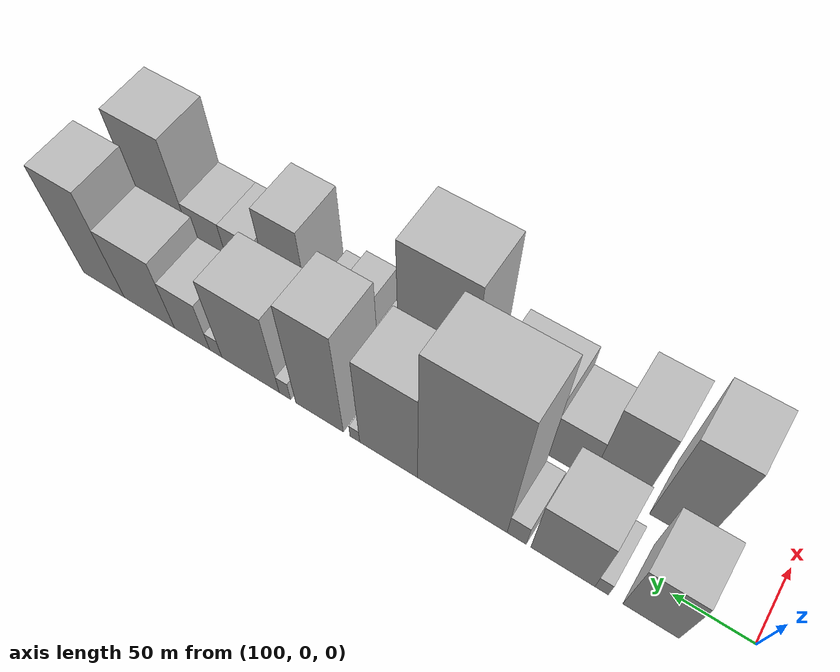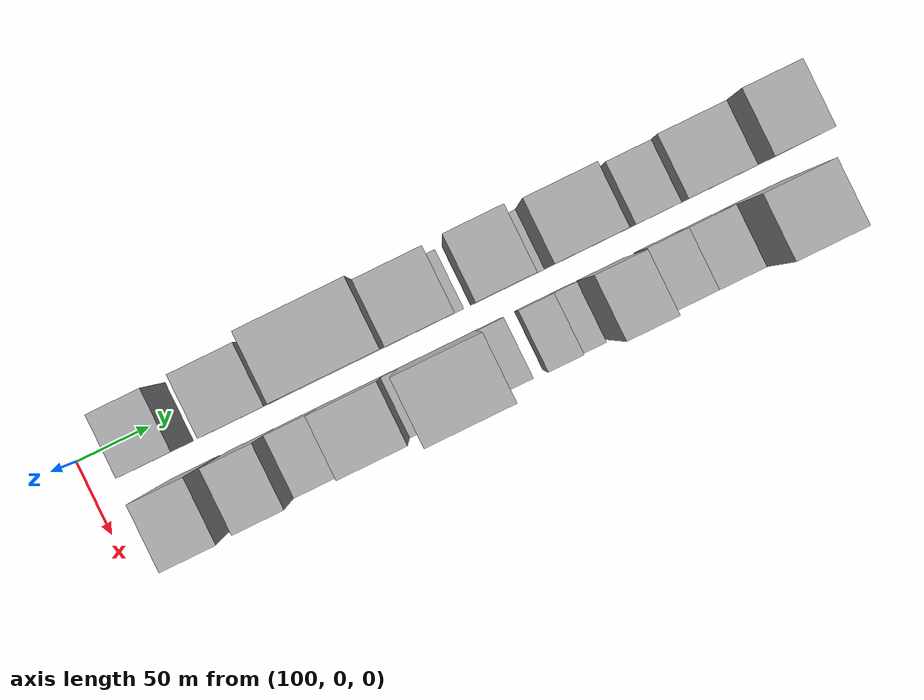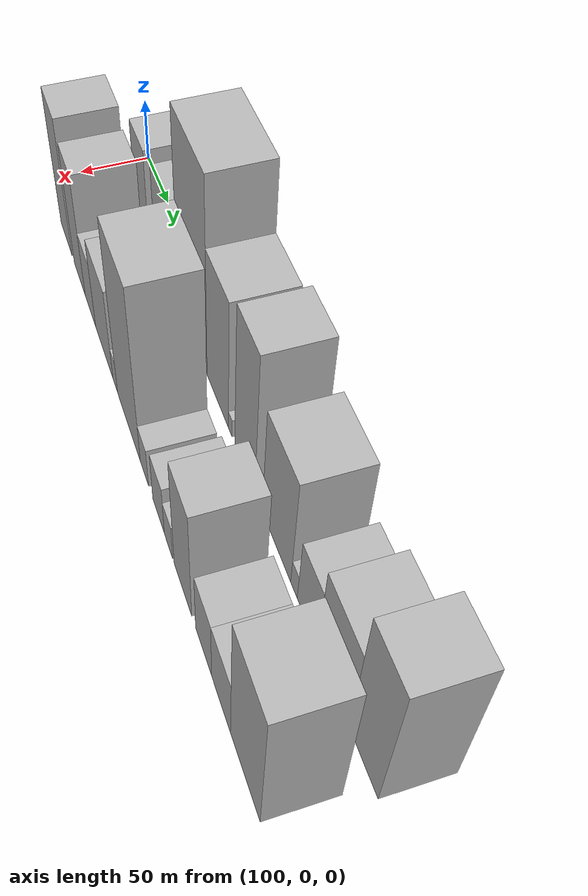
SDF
<sdf version="1.6">
 <world name="default">
  <model name="building_14">
   <static>1</static>
   <pose>100.0000 53.5605 0 0.000000 0.000000 0.000000</pose>
   <link name="link">
    <pose>0 0 33.00 0 0 0</pose>
    <collision name="collision"><geometry><box><size>40.0000 34.3290 66.0000</size></box></geometry></collision>
    <visual name="visual">
     <cast_shadows>0</cast_shadows>
     <geometry><box><size>40.0000 34.3290 66.0000</size></box></geometry>
     <material>
      <script>
       <uri>model://HANNAS_wall/materials/scripts</uri>
       <uri>model://HANNAS_wall/materials/textures</uri>
       <name>vrc/HANNAS_wall</name>
      </script>
     </material>
    </visual>
   </link>
  </model>
  <model name="building_15">
   <static>1</static>
   <pose>100.0000 83.9469 0 0.000000 0.000000 0.000000</pose>
   <link name="link">
    <pose>0 0 9.00 0 0 0</pose>
    <collision name="collision"><geometry><box><size>40.0000 8.4436 18.0000</size></box></geometry></collision>
    <visual name="visual">
     <cast_shadows>0</cast_shadows>
     <geometry><box><size>40.0000 8.4436 18.0000</size></box></geometry>
     <material>
      <script>
       <uri>model://HANNAS_wall/materials/scripts</uri>
       <uri>model://HANNAS_wall/materials/textures</uri>
       <name>vrc/HANNAS_wall</name>
      </script>
     </material>
    </visual>
   </link>
  </model>
  <model name="building_16">
   <static>1</static>
   <pose>100.0000 108.8338 0 0.000000 0.000000 0.000000</pose>
   <link name="link">
    <pose>0 0 34.50 0 0 0</pose>
    <collision name="collision"><geometry><box><size>40.0000 41.3303 69.0000</size></box></geometry></collision>
    <visual name="visual">
     <cast_shadows>0</cast_shadows>
     <geometry><box><size>40.0000 41.3303 69.0000</size></box></geometry>
     <material>
      <script>
       <uri>model://HANNAS_wall/materials/scripts</uri>
       <uri>model://HANNAS_wall/materials/textures</uri>
       <name>vrc/HANNAS_wall</name>
      </script>
     </material>
    </visual>
   </link>
  </model>
  <model name="building_17">
   <static>1</static>
   <pose>100.0000 138.8338 0 0.000000 0.000000 0.000000</pose>
   <link name="link">
    <pose>0 0 13.50 0 0 0</pose>
    <collision name="collision"><geometry><box><size>40.0000 12.6697 27.0000</size></box></geometry></collision>
    <visual name="visual">
     <cast_shadows>0</cast_shadows>
     <geometry><box><size>40.0000 12.6697 27.0000</size></box></geometry>
     <material>
      <script>
       <uri>model://HANNAS_wall/materials/scripts</uri>
       <uri>model://HANNAS_wall/materials/textures</uri>
       <name>vrc/HANNAS_wall</name>
      </script>
     </material>
    </visual>
   </link>
  </model>
  <model name="building_18">
   <static>1</static>
   <pose>100.0000 176.0116 0 0.000000 0.000000 0.000000</pose>
   <link name="link">
    <pose>0 0 78.00 0 0 0</pose>
    <collision name="collision"><geometry><box><size>40.0000 61.6860 156.0000</size></box></geometry></collision>
    <visual name="visual">
     <cast_shadows>0</cast_shadows>
     <geometry><box><size>40.0000 61.6860 156.0000</size></box></geometry>
     <material>
      <script>
       <uri>model://HANNAS_wall/materials/scripts</uri>
       <uri>model://HANNAS_wall/materials/textures</uri>
       <name>vrc/HANNAS_wall</name>
      </script>
     </material>
    </visual>
   </link>
  </model>
  <model name="building_19">
   <static>1</static>
   <pose>100.0000 227.6745 0 0.000000 0.000000 0.000000</pose>
   <link name="link">
    <pose>0 0 52.50 0 0 0</pose>
    <collision name="collision"><geometry><box><size>40.0000 41.6397 105.0000</size></box></geometry></collision>
    <visual name="visual">
     <cast_shadows>0</cast_shadows>
     <geometry><box><size>40.0000 41.6397 105.0000</size></box></geometry>
     <material>
      <script>
       <uri>model://HANNAS_wall/materials/scripts</uri>
       <uri>model://HANNAS_wall/materials/textures</uri>
       <name>vrc/HANNAS_wall</name>
      </script>
     </material>
    </visual>
   </link>
  </model>
  <model name="building_20">
   <static>1</static>
   <pose>100.0000 252.0448 0 0.000000 0.000000 0.000000</pose>
   <link name="link">
    <pose>0 0 7.50 0 0 0</pose>
    <collision name="collision"><geometry><box><size>40.0000 7.1010 15.0000</size></box></geometry></collision>
    <visual name="visual">
     <cast_shadows>0</cast_shadows>
     <geometry><box><size>40.0000 7.1010 15.0000</size></box></geometry>
     <material>
      <script>
       <uri>model://HANNAS_wall/materials/scripts</uri>
       <uri>model://HANNAS_wall/materials/textures</uri>
       <name>vrc/HANNAS_wall</name>
      </script>
     </material>
    </visual>
   </link>
  </model>
  <model name="building_21">
   <static>1</static>
   <pose>100.0000 278.5769 0 0.000000 0.000000 0.000000</pose>
   <link name="link">
    <pose>0 0 58.50 0 0 0</pose>
    <collision name="collision"><geometry><box><size>40.0000 35.9632 117.0000</size></box></geometry></collision>
    <visual name="visual">
     <cast_shadows>0</cast_shadows>
     <geometry><box><size>40.0000 35.9632 117.0000</size></box></geometry>
     <material>
      <script>
       <uri>model://HANNAS_wall/materials/scripts</uri>
       <uri>model://HANNAS_wall/materials/textures</uri>
       <name>vrc/HANNAS_wall</name>
      </script>
     </material>
    </visual>
   </link>
  </model>
  <model name="building_22">
   <static>1</static>
   <pose>100.0000 304.9520 0 0.000000 0.000000 0.000000</pose>
   <link name="link">
    <pose>0 0 10.50 0 0 0</pose>
    <collision name="collision"><geometry><box><size>40.0000 8.7869 21.0000</size></box></geometry></collision>
    <visual name="visual">
     <cast_shadows>0</cast_shadows>
     <geometry><box><size>40.0000 8.7869 21.0000</size></box></geometry>
     <material>
      <script>
       <uri>model://HANNAS_wall/materials/scripts</uri>
       <uri>model://HANNAS_wall/materials/textures</uri>
       <name>vrc/HANNAS_wall</name>
      </script>
     </material>
    </visual>
   </link>
  </model>
  <model name="building_23">
   <static>1</static>
   <pose>100.0000 332.1216 0 0.000000 0.000000 0.000000</pose>
   <link name="link">
    <pose>0 0 45.00 0 0 0</pose>
    <collision name="collision"><geometry><box><size>40.0000 45.5524 90.0000</size></box></geometry></collision>
    <visual name="visual">
     <cast_shadows>0</cast_shadows>
     <geometry><box><size>40.0000 45.5524 90.0000</size></box></geometry>
     <material>
      <script>
       <uri>model://HANNAS_wall/materials/scripts</uri>
       <uri>model://HANNAS_wall/materials/textures</uri>
       <name>vrc/HANNAS_wall</name>
      </script>
     </material>
    </visual>
   </link>
  </model>
  <model name="building_24">
   <static>1</static>
   <pose>100.0000 359.8250 0 0.000000 0.000000 0.000000</pose>
   <link name="link">
    <pose>0 0 10.50 0 0 0</pose>
    <collision name="collision"><geometry><box><size>40.0000 9.8544 21.0000</size></box></geometry></collision>
    <visual name="visual">
     <cast_shadows>0</cast_shadows>
     <geometry><box><size>40.0000 9.8544 21.0000</size></box></geometry>
     <material>
      <script>
       <uri>model://HANNAS_wall/materials/scripts</uri>
       <uri>model://HANNAS_wall/materials/textures</uri>
       <name>vrc/HANNAS_wall</name>
      </script>
     </material>
    </visual>
   </link>
  </model>
  <model name="building_25">
   <static>1</static>
   <pose>100.0000 379.3096 0 0.000000 0.000000 0.000000</pose>
   <link name="link">
    <pose>0 0 27.00 0 0 0</pose>
    <collision name="collision"><geometry><box><size>40.0000 29.1148 54.0000</size></box></geometry></collision>
    <visual name="visual">
     <cast_shadows>0</cast_shadows>
     <geometry><box><size>40.0000 29.1148 54.0000</size></box></geometry>
     <material>
      <script>
       <uri>model://HANNAS_wall/materials/scripts</uri>
       <uri>model://HANNAS_wall/materials/textures</uri>
       <name>vrc/HANNAS_wall</name>
      </script>
     </material>
    </visual>
   </link>
  </model>
  <model name="building_26">
   <static>1</static>
   <pose>100.0000 415.3340 0 0.000000 0.000000 0.000000</pose>
   <link name="link">
    <pose>0 0 37.50 0 0 0</pose>
    <collision name="collision"><geometry><box><size>40.0000 42.9338 75.0000</size></box></geometry></collision>
    <visual name="visual">
     <cast_shadows>0</cast_shadows>
     <geometry><box><size>40.0000 42.9338 75.0000</size></box></geometry>
     <material>
      <script>
       <uri>model://HANNAS_wall/materials/scripts</uri>
       <uri>model://HANNAS_wall/materials/textures</uri>
       <name>vrc/HANNAS_wall</name>
      </script>
     </material>
    </visual>
   </link>
  </model>
  <model name="building_27">
   <static>1</static>
   <pose>100.0000 454.7320 0 0.000000 0.000000 0.000000</pose>
   <link name="link">
    <pose>0 0 55.50 0 0 0</pose>
    <collision name="collision"><geometry><box><size>40.0000 35.8622 111.0000</size></box></geometry></collision>
    <visual name="visual">
     <cast_shadows>0</cast_shadows>
     <geometry><box><size>40.0000 35.8622 111.0000</size></box></geometry>
     <material>
      <script>
       <uri>model://HANNAS_wall/materials/scripts</uri>
       <uri>model://HANNAS_wall/materials/textures</uri>
       <name>vrc/HANNAS_wall</name>
      </script>
     </material>
    </visual>
   </link>
  </model>
  <model name="building_40">
   <static>1</static>
   <pose>155.0000 64.5791 0 0.000000 0.000000 0.000000</pose>
   <link name="link">
    <pose>0 0 55.50 0 0 0</pose>
    <collision name="collision"><geometry><box><size>40.0000 33.3735 111.0000</size></box></geometry></collision>
    <visual name="visual">
     <cast_shadows>0</cast_shadows>
     <geometry><box><size>40.0000 33.3735 111.0000</size></box></geometry>
     <material>
      <script>
       <uri>model://HANNAS_wall/materials/scripts</uri>
       <uri>model://HANNAS_wall/materials/textures</uri>
       <name>vrc/HANNAS_wall</name>
      </script>
     </material>
    </visual>
   </link>
  </model>
  <model name="building_41">
   <static>1</static>
   <pose>155.0000 103.9165 0 0.000000 0.000000 0.000000</pose>
   <link name="link">
    <pose>0 0 49.50 0 0 0</pose>
    <collision name="collision"><geometry><box><size>40.0000 31.3014 99.0000</size></box></geometry></collision>
    <visual name="visual">
     <cast_shadows>0</cast_shadows>
     <geometry><box><size>40.0000 31.3014 99.0000</size></box></geometry>
     <material>
      <script>
       <uri>model://HANNAS_wall/materials/scripts</uri>
       <uri>model://HANNAS_wall/materials/textures</uri>
       <name>vrc/HANNAS_wall</name>
      </script>
     </material>
    </visual>
   </link>
  </model>
  <model name="building_42">
   <static>1</static>
   <pose>155.0000 134.0524 0 0.000000 0.000000 0.000000</pose>
   <link name="link">
    <pose>0 0 27.00 0 0 0</pose>
    <collision name="collision"><geometry><box><size>40.0000 28.9704 54.0000</size></box></geometry></collision>
    <visual name="visual">
     <cast_shadows>0</cast_shadows>
     <geometry><box><size>40.0000 28.9704 54.0000</size></box></geometry>
     <material>
      <script>
       <uri>model://HANNAS_wall/materials/scripts</uri>
       <uri>model://HANNAS_wall/materials/textures</uri>
       <name>vrc/HANNAS_wall</name>
      </script>
     </material>
    </visual>
   </link>
  </model>
  <model name="building_43">
   <static>1</static>
   <pose>155.0000 170.6576 0 0.000000 0.000000 0.000000</pose>
   <link name="link">
    <pose>0 0 37.50 0 0 0</pose>
    <collision name="collision"><geometry><box><size>40.0000 44.2399 75.0000</size></box></geometry></collision>
    <visual name="visual">
     <cast_shadows>0</cast_shadows>
     <geometry><box><size>40.0000 44.2399 75.0000</size></box></geometry>
     <material>
      <script>
       <uri>model://HANNAS_wall/materials/scripts</uri>
       <uri>model://HANNAS_wall/materials/textures</uri>
       <name>vrc/HANNAS_wall</name>
      </script>
     </material>
    </visual>
   </link>
  </model>
  <model name="building_44">
   <static>1</static>
   <pose>155.0000 198.4314 0 0.000000 0.000000 0.000000</pose>
   <link name="link">
    <pose>0 0 13.50 0 0 0</pose>
    <collision name="collision"><geometry><box><size>40.0000 11.3076 27.0000</size></box></geometry></collision>
    <visual name="visual">
     <cast_shadows>0</cast_shadows>
     <geometry><box><size>40.0000 11.3076 27.0000</size></box></geometry>
     <material>
      <script>
       <uri>model://HANNAS_wall/materials/scripts</uri>
       <uri>model://HANNAS_wall/materials/textures</uri>
       <name>vrc/HANNAS_wall</name>
      </script>
     </material>
    </visual>
   </link>
  </model>
  <model name="building_45">
   <static>1</static>
   <pose>155.0000 230.2094 0 0.000000 0.000000 0.000000</pose>
   <link name="link">
    <pose>0 0 70.50 0 0 0</pose>
    <collision name="collision"><geometry><box><size>40.0000 52.2484 141.0000</size></box></geometry></collision>
    <visual name="visual">
     <cast_shadows>0</cast_shadows>
     <geometry><box><size>40.0000 52.2484 141.0000</size></box></geometry>
     <material>
      <script>
       <uri>model://HANNAS_wall/materials/scripts</uri>
       <uri>model://HANNAS_wall/materials/textures</uri>
       <name>vrc/HANNAS_wall</name>
      </script>
     </material>
    </visual>
   </link>
  </model>
  <model name="building_46">
   <static>1</static>
   <pose>155.0000 265.2321 0 0.000000 0.000000 0.000000</pose>
   <link name="link">
    <pose>0 0 16.50 0 0 0</pose>
    <collision name="collision"><geometry><box><size>40.0000 17.7971 33.0000</size></box></geometry></collision>
    <visual name="visual">
     <cast_shadows>0</cast_shadows>
     <geometry><box><size>40.0000 17.7971 33.0000</size></box></geometry>
     <material>
      <script>
       <uri>model://HANNAS_wall/materials/scripts</uri>
       <uri>model://HANNAS_wall/materials/textures</uri>
       <name>vrc/HANNAS_wall</name>
      </script>
     </material>
    </visual>
   </link>
  </model>
  <model name="building_47">
   <static>1</static>
   <pose>155.0000 294.7673 0 0.000000 0.000000 0.000000</pose>
   <link name="link">
    <pose>0 0 21.00 0 0 0</pose>
    <collision name="collision"><geometry><box><size>40.0000 23.2733 42.0000</size></box></geometry></collision>
    <visual name="visual">
     <cast_shadows>0</cast_shadows>
     <geometry><box><size>40.0000 23.2733 42.0000</size></box></geometry>
     <material>
      <script>
       <uri>model://HANNAS_wall/materials/scripts</uri>
       <uri>model://HANNAS_wall/materials/textures</uri>
       <name>vrc/HANNAS_wall</name>
      </script>
     </material>
    </visual>
   </link>
  </model>
  <model name="building_48">
   <static>1</static>
   <pose>155.0000 314.5101 0 0.000000 0.000000 0.000000</pose>
   <link name="link">
    <pose>0 0 15.00 0 0 0</pose>
    <collision name="collision"><geometry><box><size>40.0000 16.2123 30.0000</size></box></geometry></collision>
    <visual name="visual">
     <cast_shadows>0</cast_shadows>
     <geometry><box><size>40.0000 16.2123 30.0000</size></box></geometry>
     <material>
      <script>
       <uri>model://HANNAS_wall/materials/scripts</uri>
       <uri>model://HANNAS_wall/materials/textures</uri>
       <name>vrc/HANNAS_wall</name>
      </script>
     </material>
    </visual>
   </link>
  </model>
  <model name="building_49">
   <static>1</static>
   <pose>155.0000 341.7865 0 0.000000 0.000000 0.000000</pose>
   <link name="link">
    <pose>0 0 46.50 0 0 0</pose>
    <collision name="collision"><geometry><box><size>40.0000 32.3405 93.0000</size></box></geometry></collision>
    <visual name="visual">
     <cast_shadows>0</cast_shadows>
     <geometry><box><size>40.0000 32.3405 93.0000</size></box></geometry>
     <material>
      <script>
       <uri>model://HANNAS_wall/materials/scripts</uri>
       <uri>model://HANNAS_wall/materials/textures</uri>
       <name>vrc/HANNAS_wall</name>
      </script>
     </material>
    </visual>
   </link>
  </model>
  <model name="building_50">
   <static>1</static>
   <pose>155.0000 378.4575 0 0.000000 0.000000 0.000000</pose>
   <link name="link">
    <pose>0 0 25.50 0 0 0</pose>
    <collision name="collision"><geometry><box><size>40.0000 27.0016 51.0000</size></box></geometry></collision>
    <visual name="visual">
     <cast_shadows>0</cast_shadows>
     <geometry><box><size>40.0000 27.0016 51.0000</size></box></geometry>
     <material>
      <script>
       <uri>model://HANNAS_wall/materials/scripts</uri>
       <uri>model://HANNAS_wall/materials/textures</uri>
       <name>vrc/HANNAS_wall</name>
      </script>
     </material>
    </visual>
   </link>
  </model>
  <model name="building_51">
   <static>1</static>
   <pose>155.0000 407.1364 0 0.000000 0.000000 0.000000</pose>
   <link name="link">
    <pose>0 0 25.50 0 0 0</pose>
    <collision name="collision"><geometry><box><size>40.0000 30.3562 51.0000</size></box></geometry></collision>
    <visual name="visual">
     <cast_shadows>0</cast_shadows>
     <geometry><box><size>40.0000 30.3562 51.0000</size></box></geometry>
     <material>
      <script>
       <uri>model://HANNAS_wall/materials/scripts</uri>
       <uri>model://HANNAS_wall/materials/textures</uri>
       <name>vrc/HANNAS_wall</name>
      </script>
     </material>
    </visual>
   </link>
  </model>
  <model name="building_52">
   <static>1</static>
   <pose>155.0000 444.1493 0 0.000000 0.000000 0.000000</pose>
   <link name="link">
    <pose>0 0 55.50 0 0 0</pose>
    <collision name="collision"><geometry><box><size>40.0000 43.6696 111.0000</size></box></geometry></collision>
    <visual name="visual">
     <cast_shadows>0</cast_shadows>
     <geometry><box><size>40.0000 43.6696 111.0000</size></box></geometry>
     <material>
      <script>
       <uri>model://HANNAS_wall/materials/scripts</uri>
       <uri>model://HANNAS_wall/materials/textures</uri>
       <name>vrc/HANNAS_wall</name>
      </script>
     </material>
    </visual>
   </link>
  </model>
 </world>
</sdf>
